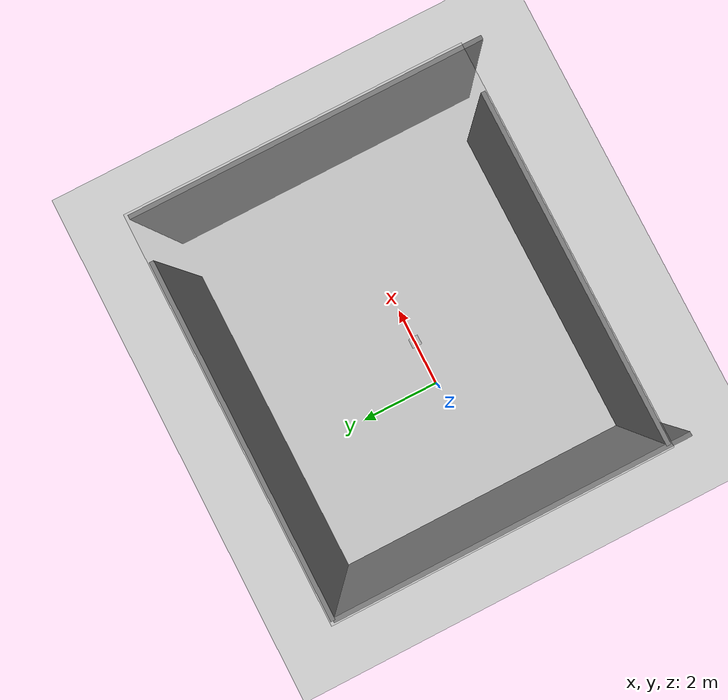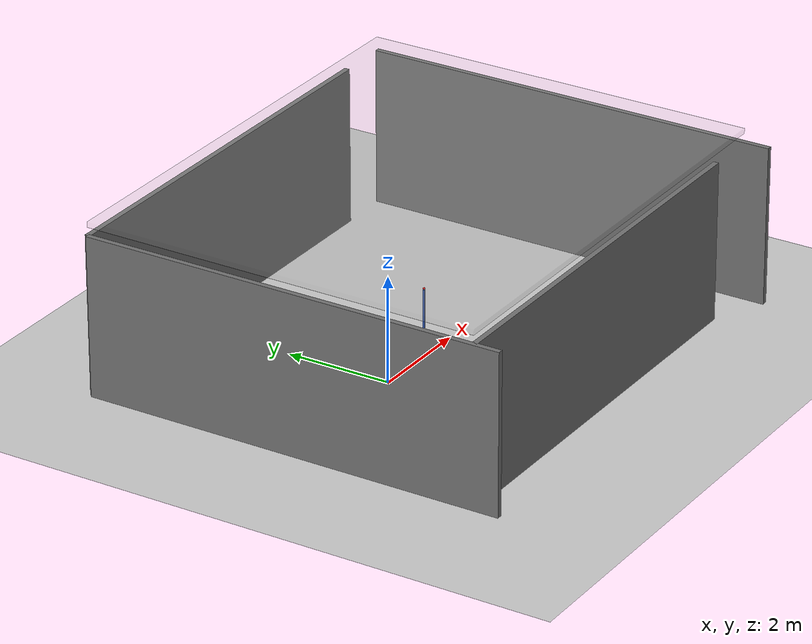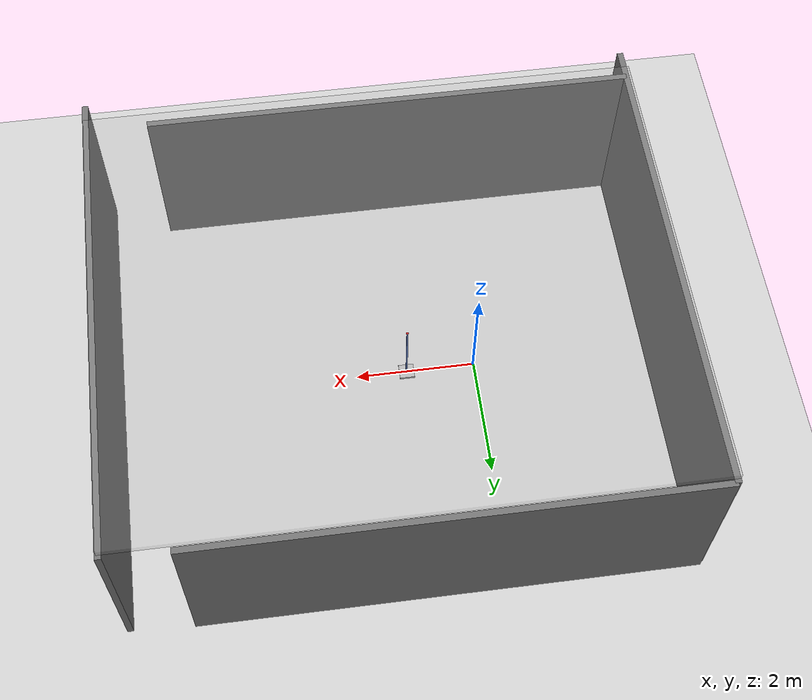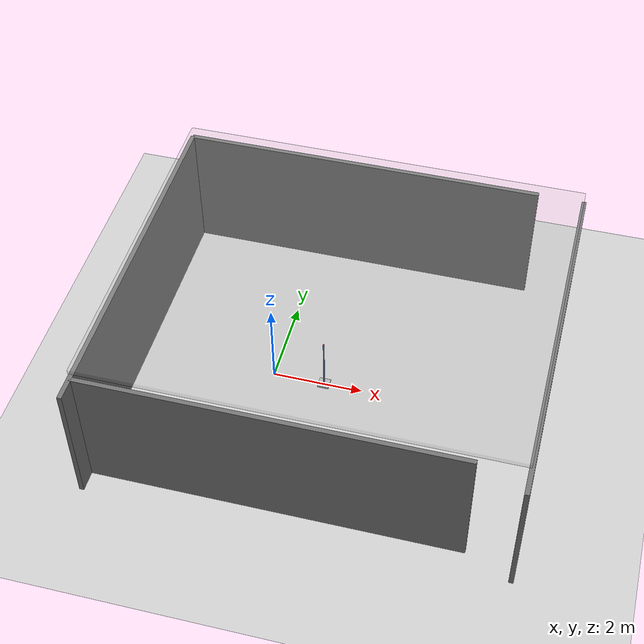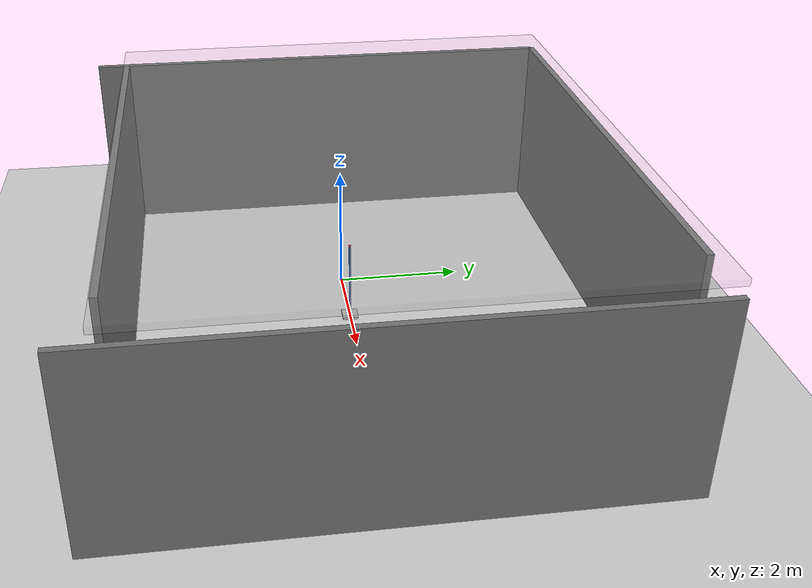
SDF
<?xml version='1.0' encoding='UTF-8'?>
<sdf version="1.6"><world name="default">
<include><uri>model://sun</uri></include><include><uri>model://ground_plane</uri></include>
<physics name="default_physics" type="ode"><max_step_size>0.001</max_step_size><real_time_update_rate>1000</real_time_update_rate><ode><solver><type>quick</type><iters>100</iters></solver></ode></physics>
<scene><ambient>0.7 0.7 0.7 1</ambient><shadows>false</shadows></scene>
<model name="rear"><static>true</static><pose>-3 0 1.5 0 0 0</pose><link name="body">
      <inertial><mass>0.01</mass><inertia><ixx>1.041666666666667e-06</ixx><iyy>1.041666666666667e-06</iyy><izz>1.041666666666667e-06</izz></inertia></inertial>
      <collision name="collision"><geometry><box><size>.1 8 3</size></box></geometry><surface><friction><ode><mu>1.2</mu><mu2>1.2</mu2></ode></friction><contact><ode><kp>20000</kp><kd>40</kd><max_vel>0.1</max_vel><min_depth>0.0001</min_depth></ode></contact></surface></collision>
      <visual name="visual"><geometry><box><size>.1 8 3</size></box></geometry><material><ambient>.45 .45 .45 1</ambient><diffuse>.45 .45 .45 1</diffuse></material></visual>
    </link></model><model name="side_l"><static>true</static><pose>1 4 1.5 0 0 0</pose><link name="body">
      <inertial><mass>0.01</mass><inertia><ixx>1.041666666666667e-06</ixx><iyy>1.041666666666667e-06</iyy><izz>1.041666666666667e-06</izz></inertia></inertial>
      <collision name="collision"><geometry><box><size>8 .1 3</size></box></geometry><surface><friction><ode><mu>1.2</mu><mu2>1.2</mu2></ode></friction><contact><ode><kp>20000</kp><kd>40</kd><max_vel>0.1</max_vel><min_depth>0.0001</min_depth></ode></contact></surface></collision>
      <visual name="visual"><geometry><box><size>8 .1 3</size></box></geometry><material><ambient>.45 .45 .45 1</ambient><diffuse>.45 .45 .45 1</diffuse></material></visual>
    </link></model><model name="side_r"><static>true</static><pose>1 -3.5 1.5 0 0 0</pose><link name="body">
      <inertial><mass>0.01</mass><inertia><ixx>1.041666666666667e-06</ixx><iyy>1.041666666666667e-06</iyy><izz>1.041666666666667e-06</izz></inertia></inertial>
      <collision name="collision"><geometry><box><size>8 .1 3</size></box></geometry><surface><friction><ode><mu>1.2</mu><mu2>1.2</mu2></ode></friction><contact><ode><kp>20000</kp><kd>40</kd><max_vel>0.1</max_vel><min_depth>0.0001</min_depth></ode></contact></surface></collision>
      <visual name="visual"><geometry><box><size>8 .1 3</size></box></geometry><material><ambient>.45 .45 .45 1</ambient><diffuse>.45 .45 .45 1</diffuse></material></visual>
    </link></model><model name="far"><static>true</static><pose>6 0 1.5 0 0 0</pose><link name="body">
      <inertial><mass>0.01</mass><inertia><ixx>1.041666666666667e-06</ixx><iyy>1.041666666666667e-06</iyy><izz>1.041666666666667e-06</izz></inertia></inertial>
      <collision name="collision"><geometry><box><size>.1 8 3</size></box></geometry><surface><friction><ode><mu>1.2</mu><mu2>1.2</mu2></ode></friction><contact><ode><kp>20000</kp><kd>40</kd><max_vel>0.1</max_vel><min_depth>0.0001</min_depth></ode></contact></surface></collision>
      <visual name="visual"><geometry><box><size>.1 8 3</size></box></geometry><material><ambient>.45 .45 .45 1</ambient><diffuse>.45 .45 .45 1</diffuse></material></visual>
    </link></model><plugin name="clock_config" filename="libgazebo_ros_state.so"><update_rate>50</update_rate></plugin><model name="lidar_ceiling"><static>true</static><pose>1.5 0.25 3.2 0 0 0</pose><link name="body"><collision name="collision"><geometry><box><size>9 7.5 0.1</size></box></geometry></collision><visual name="visual"><geometry><box><size>9 7.5 0.1</size></box></geometry><material><ambient>.65 .65 .65 1</ambient><diffuse>.65 .65 .65 1</diffuse></material><transparency>0.85</transparency></visual></link></model><model name="catch_pedestal"><static>true</static><pose>1.15 0 0 0 0 0</pose><link name="support">
<collision name="post"><pose>0 0 0.64 0 0 0</pose><geometry><box><size>0.026 0.026 1.28</size></box></geometry></collision>
<visual name="post"><pose>0 0 0.64 0 0 0</pose><geometry><box><size>0.026 0.026 1.28</size></box></geometry><material><ambient>0.2 0.35 0.7 1</ambient><diffuse>0.2 0.35 0.7 1</diffuse></material></visual>
<collision name="base"><pose>0 0 0.02 0 0 0</pose><geometry><box><size>0.25 0.25 0.04</size></box></geometry></collision>
<visual name="base"><pose>0 0 0.02 0 0 0</pose><geometry><box><size>0.25 0.25 0.04</size></box></geometry></visual>
</link></model><model name="catch_target"><static>false</static><pose>1.15 0 1.3001 0 0 0</pose><link name="payload">
<inertial><mass>0.015</mass><inertia><ixx>0.0000024</ixx><iyy>0.0000024</iyy><izz>0.0000024</izz><ixy>0</ixy><ixz>0</ixz><iyz>0</iyz></inertia></inertial>
<collision name="collision"><geometry><sphere><radius>0.02</radius></sphere></geometry><surface><friction><ode><mu>1.2</mu><mu2>1.2</mu2></ode></friction><contact><ode><kp>20000</kp><kd>40</kd><max_vel>0.1</max_vel><min_depth>0.0001</min_depth></ode></contact></surface></collision>
<visual name="red_sphere"><geometry><sphere><radius>0.02</radius></sphere></geometry><material><ambient>0.9 0.015 0.015 1</ambient><diffuse>0.9 0.015 0.015 1</diffuse></material></visual>
</link><plugin name="catch_evaluation_truth" filename="libgazebo_ros_p3d.so"><ros><namespace>/wholebody_catch/eval</namespace><remapping>odom:=object</remapping></ros><body_name>payload</body_name><frame_name>world</frame_name><update_rate>30</update_rate></plugin></model></world></sdf>
